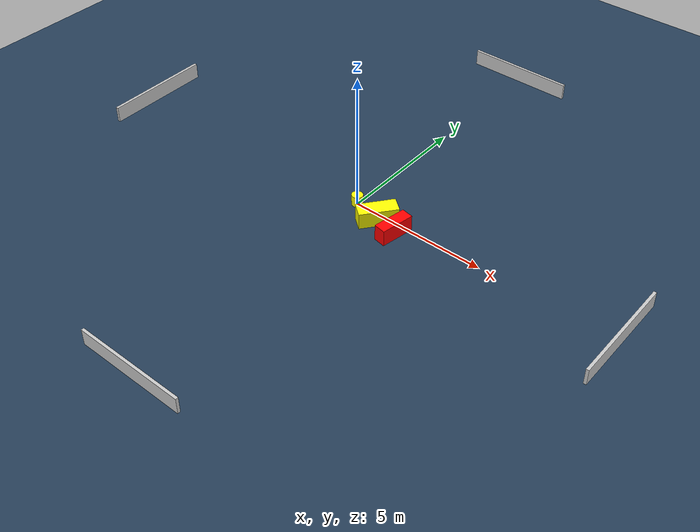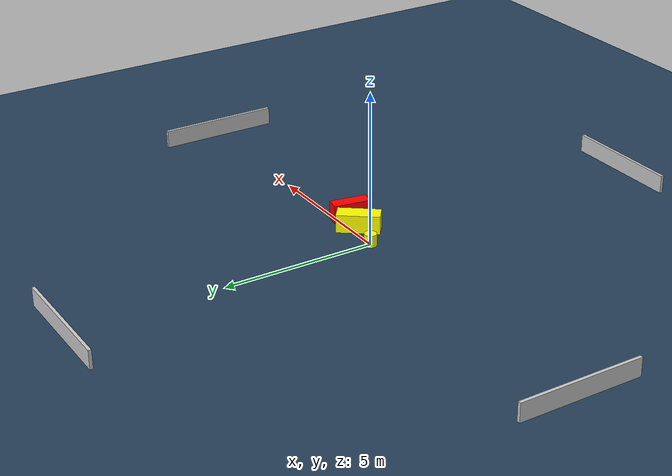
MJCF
<?xml version="1.0" ?>
<mujoco model="generated_environment">
  <option timestep="0.01" integrator="RK4" cone="elliptic"/>
  <default>
    <geom density="1"/>
  </default>
  <asset>
    <texture builtin="gradient" height="3072" name="skybox" rgb1="0.3 0.5 0.7" rgb2="0 0 0" type="skybox" width="512"/>
    <texture builtin="checker" height="300" name="groundplane" rgb1="0.2 0.3 0.4" rgb2="0.1 0.2 0.3" type="2d" width="300"/>
    <material name="groundplane" reflectance="0.2" texrepeat="5 5" texture="groundplane"/>
  </asset>
  <worldbody>
    <light dir="0 0 -1" directional="true" pos="0 0 1.5"/>
    <geom condim="3" friction="0.5 0.005 0.001" material="groundplane" name="floor" pos="0 0 0" size="0 0 0.05" type="plane"/>
    <body name="walls">
      <geom name="wall_1" condim="4" pos="-10.0 0.0 0.3" rgba="0.800000011920929 0.800000011920929 0.800000011920929 1.0" size="0.05 2.0 0.3" type="box"/>
      <geom name="wall_2" condim="4" pos="10.0 0.0 0.3" rgba="0.800000011920929 0.800000011920929 0.800000011920929 1.0" size="0.05 2.0 0.3" type="box"/>
      <geom name="wall_3" condim="4" pos="0.0 -10.0 0.3" rgba="0.800000011920929 0.800000011920929 0.800000011920929 1.0" size="2.0 0.05 0.3" type="box"/>
      <geom name="wall_4" condim="4" pos="0.0 10.0 0.3" rgba="0.800000011920929 0.800000011920929 0.800000011920929 1.0" size="2.0 0.05 0.3" type="box"/>
    </body>
    <body name="robot">
      <joint name="joint_x" type="slide" pos="0 0 0" axis="1 0 0"/>
      <joint name="joint_y" type="slide" pos="0 0 0" axis="0 1 0"/>
      <geom name="robot" type="cylinder" pos="0.0 0.0 0.2" size="0.2 0.2 0.0" mass="5.0" friction="1.0 0.005 0.0001" condim="4" rgba="1.0 1.0 0.0 1.0"/>
    </body>
    <body name="obstacle_1_movable">
      <geom name="obstacle_1_movable" condim="4" pos="1.0749460102596367 -0.2557580467241537 0.3" euler="0 0 322.12066427442403" friction="0.0 0.005 0.001" rgba="1.0 1.0 0.0 1.0" size="0.28356975612984425 0.689994450012046 0.3" type="box" mass="0.1"/>
      <joint type="free"/>
    </body>
    <body name="obstacle_2_static">
      <geom name="obstacle_2_static" condim="4" pos="1.9212177984235943 -0.46307451921909 0.3" euler="0 0 79.96387471083816" friction="0.0 0.005 0.001" rgba="1.0 0.0 0.0 1.0" size="0.6120035452156147 0.21807802063777937 0.3" type="box"/>
    </body>
  </worldbody>
  <actuator>
    <motor name="actuator_x" joint="joint_x" gear="1" ctrlrange="-1 1"/>
    <motor name="actuator_y" joint="joint_y" gear="1" ctrlrange="-1 1"/>
  </actuator>
</mujoco>
